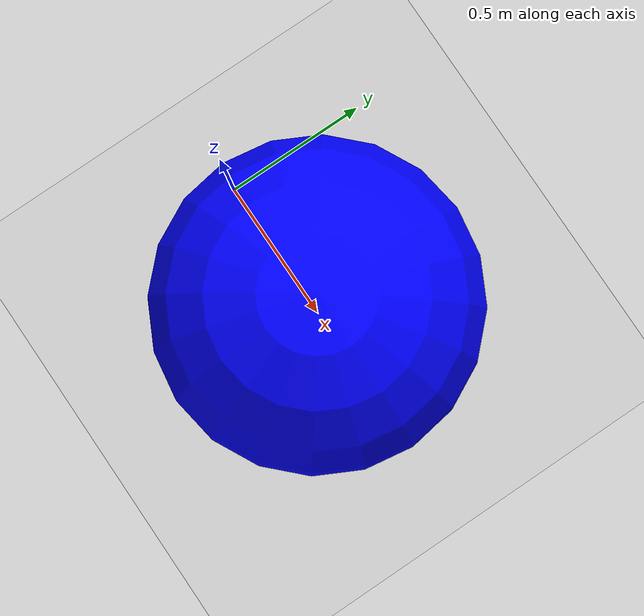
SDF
<?xml version="1.0" ?>
<sdf version="1.9">

<!--
To run the gazebo sim from the bridge
gz sim -v 4 -r src/avoa/sdf/my_robot.sdf

And the bridge
ros2 run ros_gz_bridge parameter_bridge /model/xico/cmd_vel@geometry_msgs/msg/Twist@gz.msgs.Twist
-->

<world name="3d_world">
    <physics name="1ms" type="ignored">
        <max_step_size>0.001</max_step_size>
        <real_time_factor>1.0</real_time_factor>
    </physics>
    <plugin filename="gz-sim-physics-system" name="gz::sim::systems::Physics">
    </plugin>
    <plugin filename="gz-sim-user-commands-system" name="gz::sim::systems::UserCommands">
    </plugin>
    <plugin filename="gz-sim-scene-broadcaster-system" name="gz::sim::systems::SceneBroadcaster">
    </plugin>

    <light type="directional" name="sun">
        <cast_shadows>true</cast_shadows>
        <pose>0 0 10 0 0 0</pose>
        <diffuse>0.8 0.8 0.8 1</diffuse>
        <specular>0.2 0.2 0.2 1</specular>
        <attenuation>
            <range>1000</range>
            <constant>0.9</constant>
            <linear>0.01</linear>
            <quadratic>0.001</quadratic>
        </attenuation>
        <direction>-0.5 0.1 -0.9</direction>
    </light>

    <model name="ground_plane">
        <static>true</static>
        <link name="link">
            <collision name="collision">
                <geometry>
                    <plane>
                        <normal>0 0 1</normal>
                    </plane>
                </geometry>
            </collision>
            <visual name="visual">
                <geometry>
                    <plane>
                        <normal>0 0 1</normal>
                        <size>100 100</size>
                    </plane>
                </geometry>
                <material>
                    <ambient>0.8 0.8 0.8 1</ambient>
                    <diffuse>0.8 0.8 0.8 1</diffuse>
                    <specular>0.8 0.8 0.8 1</specular>
                </material>
            </visual>
        </link>
    </model>

    <model name="xico" canonical_link="xico">
        <pose relative_to="world">0 0 0 0 0 0</pose>
        <link name="xico">
            <pose relative_to="__model__">0.5 0 0.4 0 0 0</pose>
            <inertial>
                <mass>1.0</mass>
                <inertia>
                    <ixx>0.5</ixx>
                    <ixy>0</ixy>
                    <ixz>0</ixz>
                    <iyy>0.5</iyy>
                    <iyz>0</iyz>
                    <izz>0.5</izz>
                </inertia>
            </inertial>
            <visual name="visual">
                <geometry>
                    <sphere>
                        <radius>0.5</radius>
                    </sphere>
                </geometry>
                <material>
                    <ambient>0.0 0.0 1.0 1</ambient>
                    <diffuse>0.0 0.0 1.0 1</diffuse>
                    <specular>0.0 0.0 1.0 1</specular>
                </material>
            </visual>
            <collision name="collision">
                <geometry>
                    <box>
                        <size>1.0 1.0 1.0</size>
                    </box>
                </geometry>
            </collision>

        <plugin filename="gz-sim-velocity-control-system" name="gz::sim::systems::VelocityControl">
            <initial_linear>0.0 0 0</initial_linear>
            <initial_angular>0 0 0.0</initial_angular>
        </plugin>

        </link>

    </model>
</world>
</sdf>
